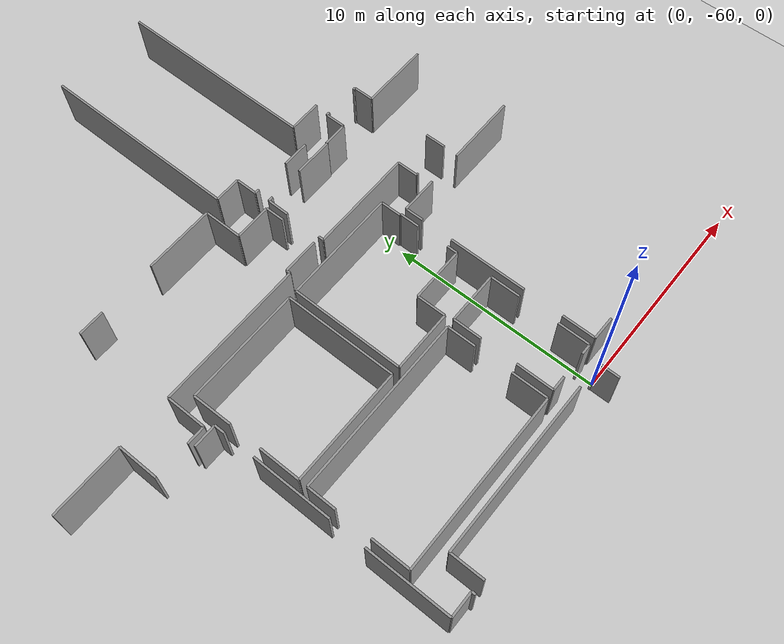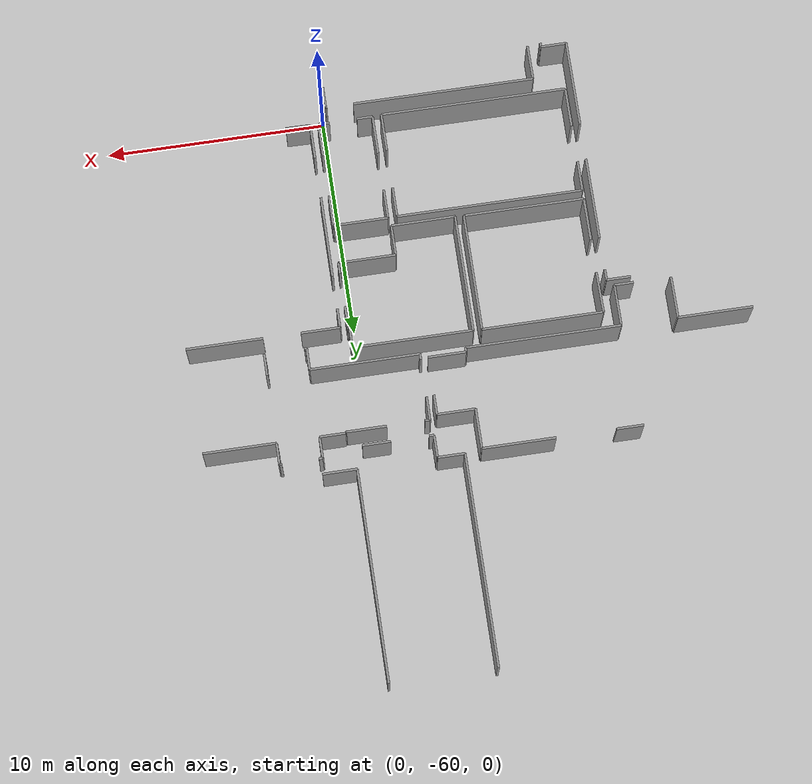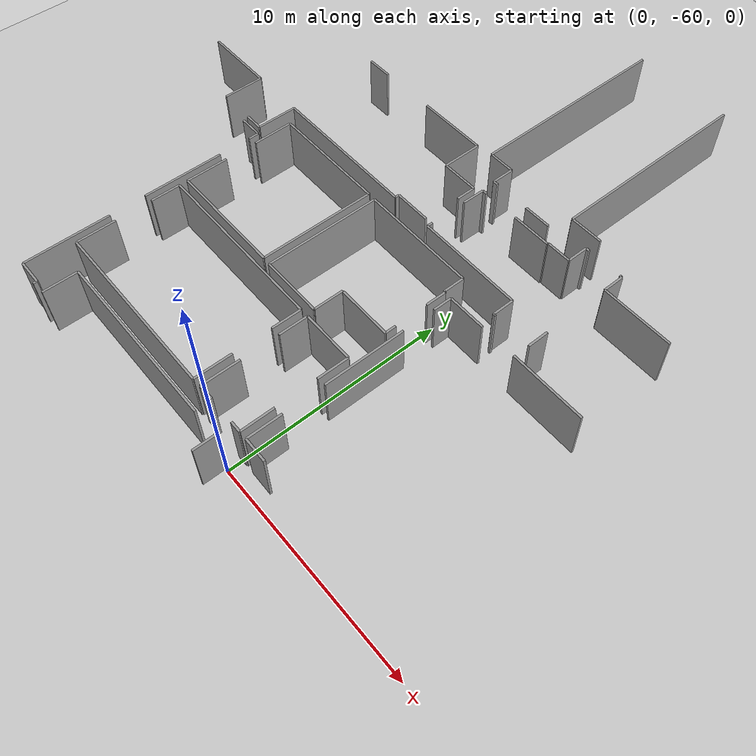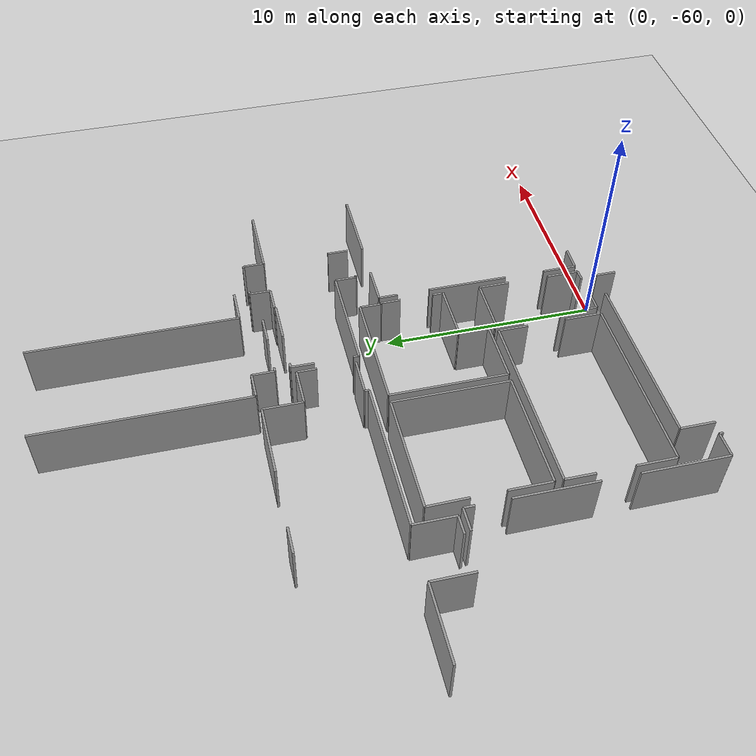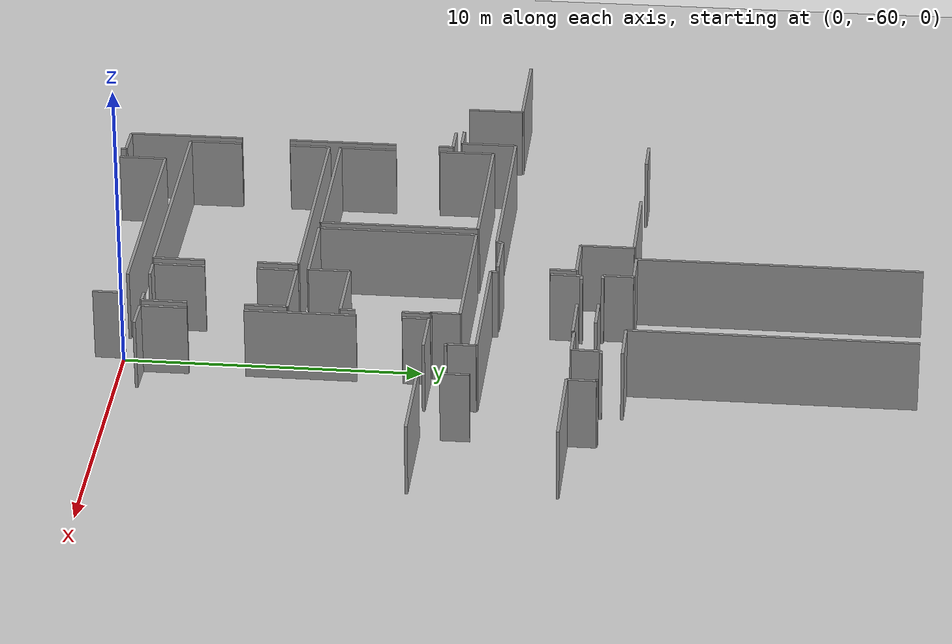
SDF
<sdf version="1.6">
 <world name="default">
  <model name="ground_plane">
   <static>1</static>
   <link name="link">
    <collision name="collision">
     <geometry><plane><normal>0 0 1</normal><size>100 100</size></plane></geometry>
     <surface><friction><ode><mu>100</mu><mu2>50</mu2></ode></friction></surface>
    </collision>
    <visual name="visual">
     <cast_shadows>0</cast_shadows>
     <geometry><plane><normal>0 0 1</normal><size>100 100</size></plane></geometry>
     <material>
      <script><uri>file://media/materials/scripts/gazebo.material</uri><name>Gazebo/Grey</name></script>
     </material>
    </visual>
   </link>
  </model>
  <model name="0510045926_A-40">
   <static>1</static>
   <link name="Wall_1530">
    <collision name="Wall_1530_Collision">
     <geometry><box><size>1.21662869726 0.1 2.5</size></box></geometry>
     <pose>0.608314348629 0 1.25 0 0 0</pose>
    </collision>
    <visual name="Wall_1530_Visual">
     <pose>0.608314348629 0 1.25 0 0 0</pose>
     <geometry><box><size>1.21662869726 0.1 2.5</size></box></geometry>
     <material>
      <script><uri>file://media/materials/scripts/gazebo.material</uri><name>Gazebo/Grey</name></script>
      <ambient>1 1 1 1</ambient>
     </material>
    </visual>
    <pose>121.913937417 -144.413597913 0 0 0 0.0</pose>
   </link>
   <link name="Wall_1531">
    <collision name="Wall_1531_Collision">
     <geometry><box><size>3.32624712057 0.1 2.5</size></box></geometry>
     <pose>1.66312356028 0 1.25 0 0 0</pose>
    </collision>
    <visual name="Wall_1531_Visual">
     <pose>1.66312356028 0 1.25 0 0 0</pose>
     <geometry><box><size>3.32624712057 0.1 2.5</size></box></geometry>
     <material>
      <script><uri>file://media/materials/scripts/gazebo.material</uri><name>Gazebo/Grey</name></script>
      <ambient>1 1 1 1</ambient>
     </material>
    </visual>
    <pose>125.848118135 -144.413597913 0 0 0 0.0</pose>
   </link>
   <link name="Wall_1532">
    <collision name="Wall_1532_Collision">
     <geometry><box><size>1.81313974223 0.1 2.5</size></box></geometry>
     <pose>0.906569871116 0 1.25 0 0 0</pose>
    </collision>
    <visual name="Wall_1532_Visual">
     <pose>0.906569871116 0 1.25 0 0 0</pose>
     <geometry><box><size>1.81313974223 0.1 2.5</size></box></geometry>
     <material>
      <script><uri>file://media/materials/scripts/gazebo.material</uri><name>Gazebo/Grey</name></script>
      <ambient>1 1 1 1</ambient>
     </material>
    </visual>
    <pose>129.174365255 -144.413597913 0 0 0 -1.57079632679</pose>
   </link>
   <link name="Wall_1533">
    <collision name="Wall_1533_Collision">
     <geometry><box><size>1.73698939606 0.1 2.5</size></box></geometry>
     <pose>0.868494698032 0 1.25 0 0 0</pose>
    </collision>
    <visual name="Wall_1533_Visual">
     <pose>0.868494698032 0 1.25 0 0 0</pose>
     <geometry><box><size>1.73698939606 0.1 2.5</size></box></geometry>
     <material>
      <script><uri>file://media/materials/scripts/gazebo.material</uri><name>Gazebo/Grey</name></script>
      <ambient>1 1 1 1</ambient>
     </material>
    </visual>
    <pose>129.174365255 -146.226737656 0 0 0 0.0</pose>
   </link>
   <link name="Wall_1534">
    <collision name="Wall_1534_Collision">
     <geometry><box><size>0.895781905409 0.1 2.5</size></box></geometry>
     <pose>0.447890952704 0 1.25 0 0 0</pose>
    </collision>
    <visual name="Wall_1534_Visual">
     <pose>0.447890952704 0 1.25 0 0 0</pose>
     <geometry><box><size>0.895781905409 0.1 2.5</size></box></geometry>
     <material>
      <script><uri>file://media/materials/scripts/gazebo.material</uri><name>Gazebo/Grey</name></script>
      <ambient>1 1 1 1</ambient>
     </material>
    </visual>
    <pose>130.911354651 -146.226737656 0 0 0 -1.57079632679</pose>
   </link>
   <link name="Wall_1535">
    <collision name="Wall_1535_Collision">
     <geometry><box><size>1.71566729914 0.1 2.5</size></box></geometry>
     <pose>0.857833649569 0 1.25 0 0 0</pose>
    </collision>
    <visual name="Wall_1535_Visual">
     <pose>0.857833649569 0 1.25 0 0 0</pose>
     <geometry><box><size>1.71566729914 0.1 2.5</size></box></geometry>
     <material>
      <script><uri>file://media/materials/scripts/gazebo.material</uri><name>Gazebo/Grey</name></script>
      <ambient>1 1 1 1</ambient>
     </material>
    </visual>
    <pose>130.911354651 -148.869662337 0 0 0 3.14159265359</pose>
   </link>
   <link name="Wall_1536">
    <collision name="Wall_1536_Collision">
     <geometry><box><size>0.195198720674 0.1 2.5</size></box></geometry>
     <pose>0.0975993603371 0 1.25 0 0 0</pose>
    </collision>
    <visual name="Wall_1536_Visual">
     <pose>0.0975993603371 0 1.25 0 0 0</pose>
     <geometry><box><size>0.195198720674 0.1 2.5</size></box></geometry>
     <material>
      <script><uri>file://media/materials/scripts/gazebo.material</uri><name>Gazebo/Grey</name></script>
      <ambient>1 1 1 1</ambient>
     </material>
    </visual>
    <pose>129.195687352 -148.869662337 0 0 0 -1.57079632679</pose>
   </link>
   <link name="Wall_1537">
    <collision name="Wall_1537_Collision">
     <geometry><box><size>7.03603815132 0.1 2.5</size></box></geometry>
     <pose>3.51801907566 0 1.25 0 0 0</pose>
    </collision>
    <visual name="Wall_1537_Visual">
     <pose>3.51801907566 0 1.25 0 0 0</pose>
     <geometry><box><size>7.03603815132 0.1 2.5</size></box></geometry>
     <material>
      <script><uri>file://media/materials/scripts/gazebo.material</uri><name>Gazebo/Grey</name></script>
      <ambient>1 1 1 1</ambient>
     </material>
    </visual>
    <pose>129.195687352 -149.064861057 0 0 0 3.14159265359</pose>
   </link>
   <link name="Wall_1538">
    <collision name="Wall_1538_Collision">
     <geometry><box><size>1.8872594125 0.1 2.5</size></box></geometry>
     <pose>0.94362970625 0 1.25 0 0 0</pose>
    </collision>
    <visual name="Wall_1538_Visual">
     <pose>0.94362970625 0 1.25 0 0 0</pose>
     <geometry><box><size>1.8872594125 0.1 2.5</size></box></geometry>
     <material>
      <script><uri>file://media/materials/scripts/gazebo.material</uri><name>Gazebo/Grey</name></script>
      <ambient>1 1 1 1</ambient>
     </material>
    </visual>
    <pose>122.159649201 -149.064861057 0 0 0 -1.57079632679</pose>
   </link>
   <link name="Wall_1539">
    <collision name="Wall_1539_Collision">
     <geometry><box><size>0.87192146361 0.1 2.5</size></box></geometry>
     <pose>0.435960731805 0 1.25 0 0 0</pose>
    </collision>
    <visual name="Wall_1539_Visual">
     <pose>0.435960731805 0 1.25 0 0 0</pose>
     <geometry><box><size>0.87192146361 0.1 2.5</size></box></geometry>
     <material>
      <script><uri>file://media/materials/scripts/gazebo.material</uri><name>Gazebo/Grey</name></script>
      <ambient>1 1 1 1</ambient>
     </material>
    </visual>
    <pose>122.159649201 -150.95212047 0 0 0 3.14159265359</pose>
   </link>
   <link name="Wall_1540">
    <collision name="Wall_1540_Collision">
     <geometry><box><size>1.89944346789 0.1 2.5</size></box></geometry>
     <pose>0.949721733943 0 1.25 0 0 0</pose>
    </collision>
    <visual name="Wall_1540_Visual">
     <pose>0.949721733943 0 1.25 0 0 0</pose>
     <geometry><box><size>1.89944346789 0.1 2.5</size></box></geometry>
     <material>
      <script><uri>file://media/materials/scripts/gazebo.material</uri><name>Gazebo/Grey</name></script>
      <ambient>1 1 1 1</ambient>
     </material>
    </visual>
    <pose>119.591098025 -150.95212047 0 0 0 1.57079632679</pose>
   </link>
   <link name="Wall_1541">
    <collision name="Wall_1541_Collision">
     <geometry><box><size>3.40671265301 0.1 2.5</size></box></geometry>
     <pose>1.70335632651 0 1.25 0 0 0</pose>
    </collision>
    <visual name="Wall_1541_Visual">
     <pose>1.70335632651 0 1.25 0 0 0</pose>
     <geometry><box><size>3.40671265301 0.1 2.5</size></box></geometry>
     <material>
      <script><uri>file://media/materials/scripts/gazebo.material</uri><name>Gazebo/Grey</name></script>
      <ambient>1 1 1 1</ambient>
     </material>
    </visual>
    <pose>119.591098025 -149.052677002 0 0 0 3.14159265359</pose>
   </link>
   <link name="Wall_1659">
    <collision name="Wall_1659_Collision">
     <geometry><box><size>1.58951155899 0.1 2.5</size></box></geometry>
     <pose>0.794755779494 0 1.25 0 0 0</pose>
    </collision>
    <visual name="Wall_1659_Visual">
     <pose>0.794755779494 0 1.25 0 0 0</pose>
     <geometry><box><size>1.58951155899 0.1 2.5</size></box></geometry>
     <material>
      <script><uri>file://media/materials/scripts/gazebo.material</uri><name>Gazebo/Grey</name></script>
      <ambient>1 1 1 1</ambient>
     </material>
    </visual>
    <pose>124.237030644 -162.722171808 0 0 0 1.57079632679</pose>
   </link>
   <link name="Wall_1660">
    <collision name="Wall_1660_Collision">
     <geometry><box><size>8.27271977307 0.1 2.5</size></box></geometry>
     <pose>4.13635988654 0 1.25 0 0 0</pose>
    </collision>
    <visual name="Wall_1660_Visual">
     <pose>4.13635988654 0 1.25 0 0 0</pose>
     <geometry><box><size>8.27271977307 0.1 2.5</size></box></geometry>
     <material>
      <script><uri>file://media/materials/scripts/gazebo.material</uri><name>Gazebo/Grey</name></script>
      <ambient>1 1 1 1</ambient>
     </material>
    </visual>
    <pose>124.237030644 -161.132660249 0 0 0 0.0</pose>
   </link>
   <link name="Wall_1661">
    <collision name="Wall_1661_Collision">
     <geometry><box><size>0.0619356148823 0.1 2.5</size></box></geometry>
     <pose>0.0309678074412 0 1.25 0 0 0</pose>
    </collision>
    <visual name="Wall_1661_Visual">
     <pose>0.0309678074412 0 1.25 0 0 0</pose>
     <geometry><box><size>0.0619356148823 0.1 2.5</size></box></geometry>
     <material>
      <script><uri>file://media/materials/scripts/gazebo.material</uri><name>Gazebo/Grey</name></script>
      <ambient>1 1 1 1</ambient>
     </material>
    </visual>
    <pose>133.713179721 -161.132660249 0 0 0 0.0</pose>
   </link>
   <link name="Wall_1662">
    <collision name="Wall_1662_Collision">
     <geometry><box><size>0.972693755037 0.1 2.5</size></box></geometry>
     <pose>0.486346877518 0 1.25 0 0 0</pose>
    </collision>
    <visual name="Wall_1662_Visual">
     <pose>0.486346877518 0 1.25 0 0 0</pose>
     <geometry><box><size>0.972693755037 0.1 2.5</size></box></geometry>
     <material>
      <script><uri>file://media/materials/scripts/gazebo.material</uri><name>Gazebo/Grey</name></script>
      <ambient>1 1 1 1</ambient>
     </material>
    </visual>
    <pose>133.775115336 -161.132660249 0 0 0 -1.57079632679</pose>
   </link>
   <link name="Wall_1666">
    <collision name="Wall_1666_Collision">
     <geometry><box><size>8.46131879708 0.1 2.5</size></box></geometry>
     <pose>4.23065939854 0 1.25 0 0 0</pose>
    </collision>
    <visual name="Wall_1666_Visual">
     <pose>4.23065939854 0 1.25 0 0 0</pose>
     <geometry><box><size>8.46131879708 0.1 2.5</size></box></geometry>
     <material>
      <script><uri>file://media/materials/scripts/gazebo.material</uri><name>Gazebo/Grey</name></script>
      <ambient>1 1 1 1</ambient>
     </material>
    </visual>
    <pose>122.862263061 -155.549570702 0 0 0 0.0</pose>
   </link>
   <link name="Wall_1667">
    <collision name="Wall_1667_Collision">
     <geometry><box><size>1.37502141728 0.1 2.5</size></box></geometry>
     <pose>0.687510708642 0 1.25 0 0 0</pose>
    </collision>
    <visual name="Wall_1667_Visual">
     <pose>0.687510708642 0 1.25 0 0 0</pose>
     <geometry><box><size>1.37502141728 0.1 2.5</size></box></geometry>
     <material>
      <script><uri>file://media/materials/scripts/gazebo.material</uri><name>Gazebo/Grey</name></script>
      <ambient>1 1 1 1</ambient>
     </material>
    </visual>
    <pose>131.323581858 -155.549570702 0 0 0 -1.57079632679</pose>
   </link>
   <link name="Wall_1668">
    <collision name="Wall_1668_Collision">
     <geometry><box><size>1.72328233375 0.1 2.5</size></box></geometry>
     <pose>0.861641166877 0 1.25 0 0 0</pose>
    </collision>
    <visual name="Wall_1668_Visual">
     <pose>0.861641166877 0 1.25 0 0 0</pose>
     <geometry><box><size>1.72328233375 0.1 2.5</size></box></geometry>
     <material>
      <script><uri>file://media/materials/scripts/gazebo.material</uri><name>Gazebo/Grey</name></script>
      <ambient>1 1 1 1</ambient>
     </material>
    </visual>
    <pose>131.323581858 -158.713363751 0 0 0 -1.57079632679</pose>
   </link>
   <link name="Wall_1669">
    <collision name="Wall_1669_Collision">
     <geometry><box><size>8.46385714195 0.1 2.5</size></box></geometry>
     <pose>4.23192857098 0 1.25 0 0 0</pose>
    </collision>
    <visual name="Wall_1669_Visual">
     <pose>4.23192857098 0 1.25 0 0 0</pose>
     <geometry><box><size>8.46385714195 0.1 2.5</size></box></geometry>
     <material>
      <script><uri>file://media/materials/scripts/gazebo.material</uri><name>Gazebo/Grey</name></script>
      <ambient>1 1 1 1</ambient>
     </material>
    </visual>
    <pose>131.323581858 -160.436646085 0 0 0 3.14159265359</pose>
   </link>
   <link name="Wall_1670">
    <collision name="Wall_1670_Collision">
     <geometry><box><size>1.81440891467 0.1 2.5</size></box></geometry>
     <pose>0.907204457334 0 1.25 0 0 0</pose>
    </collision>
    <visual name="Wall_1670_Visual">
     <pose>0.907204457334 0 1.25 0 0 0</pose>
     <geometry><box><size>1.81440891467 0.1 2.5</size></box></geometry>
     <material>
      <script><uri>file://media/materials/scripts/gazebo.material</uri><name>Gazebo/Grey</name></script>
      <ambient>1 1 1 1</ambient>
     </material>
    </visual>
    <pose>122.859724716 -160.436646085 0 0 0 1.57079632679</pose>
   </link>
   <link name="Wall_1671">
    <collision name="Wall_1671_Collision">
     <geometry><box><size>1.37045474727 0.1 2.5</size></box></geometry>
     <pose>0.685227373634 0 1.25 0 0 0</pose>
    </collision>
    <visual name="Wall_1671_Visual">
     <pose>0.685227373634 0 1.25 0 0 0</pose>
     <geometry><box><size>1.37045474727 0.1 2.5</size></box></geometry>
     <material>
      <script><uri>file://media/materials/scripts/gazebo.material</uri><name>Gazebo/Grey</name></script>
      <ambient>1 1 1 1</ambient>
     </material>
    </visual>
    <pose>122.859724716 -156.920023099 0 0 0 1.56894413406</pose>
   </link>
   <link name="Wall_1672">
    <collision name="Wall_1672_Collision">
     <geometry><box><size>5.49729348978 0.1 2.5</size></box></geometry>
     <pose>2.74864674489 0 1.25 0 0 0</pose>
    </collision>
    <visual name="Wall_1672_Visual">
     <pose>2.74864674489 0 1.25 0 0 0</pose>
     <geometry><box><size>5.49729348978 0.1 2.5</size></box></geometry>
     <material>
      <script><uri>file://media/materials/scripts/gazebo.material</uri><name>Gazebo/Grey</name></script>
      <ambient>1 1 1 1</ambient>
     </material>
    </visual>
    <pose>122.841956302 -149.788797015 0 0 0 0.0</pose>
   </link>
   <link name="Wall_1673">
    <collision name="Wall_1673_Collision">
     <geometry><box><size>5.36022286668 0.1 2.5</size></box></geometry>
     <pose>2.68011143334 0 1.25 0 0 0</pose>
    </collision>
    <visual name="Wall_1673_Visual">
     <pose>2.68011143334 0 1.25 0 0 0</pose>
     <geometry><box><size>5.36022286668 0.1 2.5</size></box></geometry>
     <material>
      <script><uri>file://media/materials/scripts/gazebo.material</uri><name>Gazebo/Grey</name></script>
      <ambient>1 1 1 1</ambient>
     </material>
    </visual>
    <pose>128.339249792 -149.788797015 0 0 0 -1.57079632679</pose>
   </link>
   <link name="Wall_1674">
    <collision name="Wall_1674_Collision">
     <geometry><box><size>5.4749560549 0.1 2.5</size></box></geometry>
     <pose>2.73747802745 0 1.25 0 0 0</pose>
    </collision>
    <visual name="Wall_1674_Visual">
     <pose>2.73747802745 0 1.25 0 0 0</pose>
     <geometry><box><size>5.4749560549 0.1 2.5</size></box></geometry>
     <material>
      <script><uri>file://media/materials/scripts/gazebo.material</uri><name>Gazebo/Grey</name></script>
      <ambient>1 1 1 1</ambient>
     </material>
    </visual>
    <pose>128.339249792 -155.149019882 0 0 0 3.14159265359</pose>
   </link>
   <link name="Wall_1675">
    <collision name="Wall_1675_Collision">
     <geometry><box><size>1.96264825521 0.1 2.5</size></box></geometry>
     <pose>0.981324127603 0 1.25 0 0 0</pose>
    </collision>
    <visual name="Wall_1675_Visual">
     <pose>0.981324127603 0 1.25 0 0 0</pose>
     <geometry><box><size>1.96264825521 0.1 2.5</size></box></geometry>
     <material>
      <script><uri>file://media/materials/scripts/gazebo.material</uri><name>Gazebo/Grey</name></script>
      <ambient>1 1 1 1</ambient>
     </material>
    </visual>
    <pose>122.864293737 -155.149019882 0 0 0 1.57079632679</pose>
   </link>
   <link name="Wall_1676">
    <collision name="Wall_1676_Collision">
     <geometry><box><size>1.86810154386 0.1 2.5</size></box></geometry>
     <pose>0.934050771928 0 1.25 0 0 0</pose>
    </collision>
    <visual name="Wall_1676_Visual">
     <pose>0.934050771928 0 1.25 0 0 0</pose>
     <geometry><box><size>1.86810154386 0.1 2.5</size></box></geometry>
     <material>
      <script><uri>file://media/materials/scripts/gazebo.material</uri><name>Gazebo/Grey</name></script>
      <ambient>1 1 1 1</ambient>
     </material>
    </visual>
    <pose>122.864293737 -151.656765006 0 0 0 1.58275390334</pose>
   </link>
   <link name="Wall_1714">
    <collision name="Wall_1714_Collision">
     <geometry><box><size>1.09428047442 0.1 2.5</size></box></geometry>
     <pose>0.547140237208 0 1.25 0 0 0</pose>
    </collision>
    <visual name="Wall_1714_Visual">
     <pose>0.547140237208 0 1.25 0 0 0</pose>
     <geometry><box><size>1.09428047442 0.1 2.5</size></box></geometry>
     <material>
      <script><uri>file://media/materials/scripts/gazebo.material</uri><name>Gazebo/Grey</name></script>
      <ambient>1 1 1 1</ambient>
     </material>
    </visual>
    <pose>121.371239283 -151.234892089 0 0 0 0.0</pose>
   </link>
   <link name="Wall_1715">
    <collision name="Wall_1715_Collision">
     <geometry><box><size>0.490915898289 0.1 2.5</size></box></geometry>
     <pose>0.245457949144 0 1.25 0 0 0</pose>
    </collision>
    <visual name="Wall_1715_Visual">
     <pose>0.245457949144 0 1.25 0 0 0</pose>
     <geometry><box><size>0.490915898289 0.1 2.5</size></box></geometry>
     <material>
      <script><uri>file://media/materials/scripts/gazebo.material</uri><name>Gazebo/Grey</name></script>
      <ambient>1 1 1 1</ambient>
     </material>
    </visual>
    <pose>122.465519758 -151.234892089 0 0 0 -1.57079632679</pose>
   </link>
   <link name="Wall_1716">
    <collision name="Wall_1716_Collision">
     <geometry><box><size>3.74964304525 0.1 2.5</size></box></geometry>
     <pose>1.87482152263 0 1.25 0 0 0</pose>
    </collision>
    <visual name="Wall_1716_Visual">
     <pose>1.87482152263 0 1.25 0 0 0</pose>
     <geometry><box><size>3.74964304525 0.1 2.5</size></box></geometry>
     <material>
      <script><uri>file://media/materials/scripts/gazebo.material</uri><name>Gazebo/Grey</name></script>
      <ambient>1 1 1 1</ambient>
     </material>
    </visual>
    <pose>122.465519758 -153.235615517 0 0 0 -1.57079632679</pose>
   </link>
   <link name="Wall_1717">
    <collision name="Wall_1717_Collision">
     <geometry><box><size>3.93874973823 0.1 2.5</size></box></geometry>
     <pose>1.96937486912 0 1.25 0 0 0</pose>
    </collision>
    <visual name="Wall_1717_Visual">
     <pose>1.96937486912 0 1.25 0 0 0</pose>
     <geometry><box><size>3.93874973823 0.1 2.5</size></box></geometry>
     <material>
      <script><uri>file://media/materials/scripts/gazebo.material</uri><name>Gazebo/Grey</name></script>
      <ambient>1 1 1 1</ambient>
     </material>
    </visual>
    <pose>122.465519758 -158.660058509 0 0 0 -1.57079632679</pose>
   </link>
   <link name="Wall_1718">
    <collision name="Wall_1718_Collision">
     <geometry><box><size>1.1661156343 0.1 2.5</size></box></geometry>
     <pose>0.58305781715 0 1.25 0 0 0</pose>
    </collision>
    <visual name="Wall_1718_Visual">
     <pose>0.58305781715 0 1.25 0 0 0</pose>
     <geometry><box><size>1.1661156343 0.1 2.5</size></box></geometry>
     <material>
      <script><uri>file://media/materials/scripts/gazebo.material</uri><name>Gazebo/Grey</name></script>
      <ambient>1 1 1 1</ambient>
     </material>
    </visual>
    <pose>122.465519758 -162.598808247 0 0 0 0.0</pose>
   </link>
   <link name="Wall_1719">
    <collision name="Wall_1719_Collision">
     <geometry><box><size>0.176922637594 0.1 2.5</size></box></geometry>
     <pose>0.0884613187971 0 1.25 0 0 0</pose>
    </collision>
    <visual name="Wall_1719_Visual">
     <pose>0.0884613187971 0 1.25 0 0 0</pose>
     <geometry><box><size>0.176922637594 0.1 2.5</size></box></geometry>
     <material>
      <script><uri>file://media/materials/scripts/gazebo.material</uri><name>Gazebo/Grey</name></script>
      <ambient>1 1 1 1</ambient>
     </material>
    </visual>
    <pose>123.631635392 -162.598808247 0 0 0 -1.57079632679</pose>
   </link>
   <link name="Wall_1758">
    <collision name="Wall_1758_Collision">
     <geometry><box><size>5.36504572194 0.1 2.5</size></box></geometry>
     <pose>2.68252286097 0 1.25 0 0 0</pose>
    </collision>
    <visual name="Wall_1758_Visual">
     <pose>2.68252286097 0 1.25 0 0 0</pose>
     <geometry><box><size>5.36504572194 0.1 2.5</size></box></geometry>
     <material>
      <script><uri>file://media/materials/scripts/gazebo.material</uri><name>Gazebo/Grey</name></script>
      <ambient>1 1 1 1</ambient>
     </material>
    </visual>
    <pose>128.733708585 -155.170595813 0 0 0 1.57079632679</pose>
   </link>
   <link name="Wall_1759">
    <collision name="Wall_1759_Collision">
     <geometry><box><size>5.44601892336 0.1 2.5</size></box></geometry>
     <pose>2.72300946168 0 1.25 0 0 0</pose>
    </collision>
    <visual name="Wall_1759_Visual">
     <pose>2.72300946168 0 1.25 0 0 0</pose>
     <geometry><box><size>5.44601892336 0.1 2.5</size></box></geometry>
     <material>
      <script><uri>file://media/materials/scripts/gazebo.material</uri><name>Gazebo/Grey</name></script>
      <ambient>1 1 1 1</ambient>
     </material>
    </visual>
    <pose>128.733708585 -149.805550091 0 0 0 0.0</pose>
   </link>
   <link name="Wall_1760">
    <collision name="Wall_1760_Collision">
     <geometry><box><size>0.983608637988 0.1 2.5</size></box></geometry>
     <pose>0.491804318994 0 1.25 0 0 0</pose>
    </collision>
    <visual name="Wall_1760_Visual">
     <pose>0.491804318994 0 1.25 0 0 0</pose>
     <geometry><box><size>0.983608637988 0.1 2.5</size></box></geometry>
     <material>
      <script><uri>file://media/materials/scripts/gazebo.material</uri><name>Gazebo/Grey</name></script>
      <ambient>1 1 1 1</ambient>
     </material>
    </visual>
    <pose>134.179727509 -149.805550091 0 0 0 -1.57079632679</pose>
   </link>
   <link name="Wall_1761">
    <collision name="Wall_1761_Collision">
     <geometry><box><size>0.0560974216762 0.1 2.5</size></box></geometry>
     <pose>0.0280487108381 0 1.25 0 0 0</pose>
    </collision>
    <visual name="Wall_1761_Visual">
     <pose>0.0280487108381 0 1.25 0 0 0</pose>
     <geometry><box><size>0.0560974216762 0.1 2.5</size></box></geometry>
     <material>
      <script><uri>file://media/materials/scripts/gazebo.material</uri><name>Gazebo/Grey</name></script>
      <ambient>1 1 1 1</ambient>
     </material>
    </visual>
    <pose>134.179727509 -150.789158729 0 0 0 0.0</pose>
   </link>
   <link name="Wall_1762">
    <collision name="Wall_1762_Collision">
     <geometry><box><size>0.940202940673 0.1 2.5</size></box></geometry>
     <pose>0.470101470336 0 1.25 0 0 0</pose>
    </collision>
    <visual name="Wall_1762_Visual">
     <pose>0.470101470336 0 1.25 0 0 0</pose>
     <geometry><box><size>0.940202940673 0.1 2.5</size></box></geometry>
     <material>
      <script><uri>file://media/materials/scripts/gazebo.material</uri><name>Gazebo/Grey</name></script>
      <ambient>1 1 1 1</ambient>
     </material>
    </visual>
    <pose>134.23582493 -150.789158729 0 0 0 -1.57079632679</pose>
   </link>
   <link name="Wall_1763">
    <collision name="Wall_1763_Collision">
     <geometry><box><size>0.49903860188 0.1 2.5</size></box></geometry>
     <pose>0.24951930094 0 1.25 0 0 0</pose>
    </collision>
    <visual name="Wall_1763_Visual">
     <pose>0.24951930094 0 1.25 0 0 0</pose>
     <geometry><box><size>0.49903860188 0.1 2.5</size></box></geometry>
     <material>
      <script><uri>file://media/materials/scripts/gazebo.material</uri><name>Gazebo/Grey</name></script>
      <ambient>1 1 1 1</ambient>
     </material>
    </visual>
    <pose>134.23582493 -153.278259711 0 0 0 -1.57079632679</pose>
   </link>
   <link name="Wall_1764">
    <collision name="Wall_1764_Collision">
     <geometry><box><size>2.59368079044 0.1 2.5</size></box></geometry>
     <pose>1.29684039522 0 1.25 0 0 0</pose>
    </collision>
    <visual name="Wall_1764_Visual">
     <pose>1.29684039522 0 1.25 0 0 0</pose>
     <geometry><box><size>2.59368079044 0.1 2.5</size></box></geometry>
     <material>
      <script><uri>file://media/materials/scripts/gazebo.material</uri><name>Gazebo/Grey</name></script>
      <ambient>1 1 1 1</ambient>
     </material>
    </visual>
    <pose>134.23582493 -153.777298313 0 0 0 3.14159265359</pose>
   </link>
   <link name="Wall_1765">
    <collision name="Wall_1765_Collision">
     <geometry><box><size>1.38441329331 0.1 2.5</size></box></geometry>
     <pose>0.692206646656 0 1.25 0 0 0</pose>
    </collision>
    <visual name="Wall_1765_Visual">
     <pose>0.692206646656 0 1.25 0 0 0</pose>
     <geometry><box><size>1.38441329331 0.1 2.5</size></box></geometry>
     <material>
      <script><uri>file://media/materials/scripts/gazebo.material</uri><name>Gazebo/Grey</name></script>
      <ambient>1 1 1 1</ambient>
     </material>
    </visual>
    <pose>131.64214414 -153.777298313 0 0 0 -1.57079632679</pose>
   </link>
   <link name="Wall_1766">
    <collision name="Wall_1766_Collision">
     <geometry><box><size>2.90844912357 0.1 2.5</size></box></geometry>
     <pose>1.45422456178 0 1.25 0 0 0</pose>
    </collision>
    <visual name="Wall_1766_Visual">
     <pose>1.45422456178 0 1.25 0 0 0</pose>
     <geometry><box><size>2.90844912357 0.1 2.5</size></box></geometry>
     <material>
      <script><uri>file://media/materials/scripts/gazebo.material</uri><name>Gazebo/Grey</name></script>
      <ambient>1 1 1 1</ambient>
     </material>
    </visual>
    <pose>131.64214414 -155.161711606 0 0 0 -3.13853802877</pose>
   </link>
   <link name="Wall_1767">
    <collision name="Wall_1767_Collision">
     <geometry><box><size>0.222612845294 0.1 2.5</size></box></geometry>
     <pose>0.111306422647 0 1.25 0 0 0</pose>
    </collision>
    <visual name="Wall_1767_Visual">
     <pose>0.111306422647 0 1.25 0 0 0</pose>
     <geometry><box><size>0.222612845294 0.1 2.5</size></box></geometry>
     <material>
      <script><uri>file://media/materials/scripts/gazebo.material</uri><name>Gazebo/Grey</name></script>
      <ambient>1 1 1 1</ambient>
     </material>
    </visual>
    <pose>131.254538878 -146.028492921 0 0 0 0.0</pose>
   </link>
   <link name="Wall_1768">
    <collision name="Wall_1768_Collision">
     <geometry><box><size>1.84664589454 0.1 2.5</size></box></geometry>
     <pose>0.923322947272 0 1.25 0 0 0</pose>
    </collision>
    <visual name="Wall_1768_Visual">
     <pose>0.923322947272 0 1.25 0 0 0</pose>
     <geometry><box><size>1.84664589454 0.1 2.5</size></box></geometry>
     <material>
      <script><uri>file://media/materials/scripts/gazebo.material</uri><name>Gazebo/Grey</name></script>
      <ambient>1 1 1 1</ambient>
     </material>
    </visual>
    <pose>133.182919477 -146.028492921 0 0 0 0.0</pose>
   </link>
   <link name="Wall_1769">
    <collision name="Wall_1769_Collision">
     <geometry><box><size>0.0505130629573 0.1 2.5</size></box></geometry>
     <pose>0.0252565314786 0 1.25 0 0 0</pose>
    </collision>
    <visual name="Wall_1769_Visual">
     <pose>0.0252565314786 0 1.25 0 0 0</pose>
     <geometry><box><size>0.0505130629573 0.1 2.5</size></box></geometry>
     <material>
      <script><uri>file://media/materials/scripts/gazebo.material</uri><name>Gazebo/Grey</name></script>
      <ambient>1 1 1 1</ambient>
     </material>
    </visual>
    <pose>135.029565372 -146.028492921 0 0 0 1.57079632679</pose>
   </link>
   <link name="Wall_1770">
    <collision name="Wall_1770_Collision">
     <geometry><box><size>1.16306962045 0.1 2.5</size></box></geometry>
     <pose>0.581534810227 0 1.25 0 0 0</pose>
    </collision>
    <visual name="Wall_1770_Visual">
     <pose>0.581534810227 0 1.25 0 0 0</pose>
     <geometry><box><size>1.16306962045 0.1 2.5</size></box></geometry>
     <material>
      <script><uri>file://media/materials/scripts/gazebo.material</uri><name>Gazebo/Grey</name></script>
      <ambient>1 1 1 1</ambient>
     </material>
    </visual>
    <pose>135.029565372 -145.977979858 0 0 0 0.0</pose>
   </link>
   <link name="Wall_1771">
    <collision name="Wall_1771_Collision">
     <geometry><box><size>0.971424582601 0.1 2.5</size></box></geometry>
     <pose>0.4857122913 0 1.25 0 0 0</pose>
    </collision>
    <visual name="Wall_1771_Visual">
     <pose>0.4857122913 0 1.25 0 0 0</pose>
     <geometry><box><size>0.971424582601 0.1 2.5</size></box></geometry>
     <material>
      <script><uri>file://media/materials/scripts/gazebo.material</uri><name>Gazebo/Grey</name></script>
      <ambient>1 1 1 1</ambient>
     </material>
    </visual>
    <pose>136.192634992 -145.977979858 0 0 0 1.57079632679</pose>
   </link>
   <link name="Wall_1772">
    <collision name="Wall_1772_Collision">
     <geometry><box><size>0.169307602977 0.1 2.5</size></box></geometry>
     <pose>0.0846538014887 0 1.25 0 0 0</pose>
    </collision>
    <visual name="Wall_1772_Visual">
     <pose>0.0846538014887 0 1.25 0 0 0</pose>
     <geometry><box><size>0.169307602977 0.1 2.5</size></box></geometry>
     <material>
      <script><uri>file://media/materials/scripts/gazebo.material</uri><name>Gazebo/Grey</name></script>
      <ambient>1 1 1 1</ambient>
     </material>
    </visual>
    <pose>136.192634992 -145.006555276 0 0 0 0.0</pose>
   </link>
   <link name="Wall_1773">
    <collision name="Wall_1773_Collision">
     <geometry><box><size>0.109148829506 0.1 2.5</size></box></geometry>
     <pose>0.0545744147529 0 1.25 0 0 0</pose>
    </collision>
    <visual name="Wall_1773_Visual">
     <pose>0.0545744147529 0 1.25 0 0 0</pose>
     <geometry><box><size>0.109148829506 0.1 2.5</size></box></geometry>
     <material>
      <script><uri>file://media/materials/scripts/gazebo.material</uri><name>Gazebo/Grey</name></script>
      <ambient>1 1 1 1</ambient>
     </material>
    </visual>
    <pose>138.008820748 -145.006555276 0 0 0 0.0</pose>
   </link>
   <link name="Wall_1774">
    <collision name="Wall_1774_Collision">
     <geometry><box><size>0.971678417088 0.1 2.5</size></box></geometry>
     <pose>0.485839208544 0 1.25 0 0 0</pose>
    </collision>
    <visual name="Wall_1774_Visual">
     <pose>0.485839208544 0 1.25 0 0 0</pose>
     <geometry><box><size>0.971678417088 0.1 2.5</size></box></geometry>
     <material>
      <script><uri>file://media/materials/scripts/gazebo.material</uri><name>Gazebo/Grey</name></script>
      <ambient>1 1 1 1</ambient>
     </material>
    </visual>
    <pose>138.117969578 -145.006555276 0 0 0 -1.57079632679</pose>
   </link>
   <link name="Wall_1775">
    <collision name="Wall_1775_Collision">
     <geometry><box><size>3.29756382351 0.1 2.5</size></box></geometry>
     <pose>1.64878191175 0 1.25 0 0 0</pose>
    </collision>
    <visual name="Wall_1775_Visual">
     <pose>1.64878191175 0 1.25 0 0 0</pose>
     <geometry><box><size>3.29756382351 0.1 2.5</size></box></geometry>
     <material>
      <script><uri>file://media/materials/scripts/gazebo.material</uri><name>Gazebo/Grey</name></script>
      <ambient>1 1 1 1</ambient>
     </material>
    </visual>
    <pose>138.117969578 -145.978233693 0 0 0 0.0</pose>
   </link>
   <link name="Wall_1847">
    <collision name="Wall_1847_Collision">
     <geometry><box><size>0.972947589524 0.1 2.5</size></box></geometry>
     <pose>0.486473794762 0 1.25 0 0 0</pose>
    </collision>
    <visual name="Wall_1847_Visual">
     <pose>0.486473794762 0 1.25 0 0 0</pose>
     <geometry><box><size>0.972947589524 0.1 2.5</size></box></geometry>
     <material>
      <script><uri>file://media/materials/scripts/gazebo.material</uri><name>Gazebo/Grey</name></script>
      <ambient>1 1 1 1</ambient>
     </material>
    </visual>
    <pose>138.111369881 -149.106236079 0 0 0 -1.57079632679</pose>
   </link>
   <link name="Wall_1848">
    <collision name="Wall_1848_Collision">
     <geometry><box><size>0.107118153608 0.1 2.5</size></box></geometry>
     <pose>0.053559076804 0 1.25 0 0 0</pose>
    </collision>
    <visual name="Wall_1848_Visual">
     <pose>0.053559076804 0 1.25 0 0 0</pose>
     <geometry><box><size>0.107118153608 0.1 2.5</size></box></geometry>
     <material>
      <script><uri>file://media/materials/scripts/gazebo.material</uri><name>Gazebo/Grey</name></script>
      <ambient>1 1 1 1</ambient>
     </material>
    </visual>
    <pose>136.308129684 -150.079183668 0 0 0 3.14159265359</pose>
   </link>
   <link name="Wall_1849">
    <collision name="Wall_1849_Collision">
     <geometry><box><size>0.999600210683 0.1 2.5</size></box></geometry>
     <pose>0.499800105341 0 1.25 0 0 0</pose>
    </collision>
    <visual name="Wall_1849_Visual">
     <pose>0.499800105341 0 1.25 0 0 0</pose>
     <geometry><box><size>0.999600210683 0.1 2.5</size></box></geometry>
     <material>
      <script><uri>file://media/materials/scripts/gazebo.material</uri><name>Gazebo/Grey</name></script>
      <ambient>1 1 1 1</ambient>
     </material>
    </visual>
    <pose>136.20101153 -150.079183668 0 0 0 1.57079632679</pose>
   </link>
   <link name="Wall_1850">
    <collision name="Wall_1850_Collision">
     <geometry><box><size>4.95814903892 0.1 2.5</size></box></geometry>
     <pose>2.47907451946 0 1.25 0 0 0</pose>
    </collision>
    <visual name="Wall_1850_Visual">
     <pose>2.47907451946 0 1.25 0 0 0</pose>
     <geometry><box><size>4.95814903892 0.1 2.5</size></box></geometry>
     <material>
      <script><uri>file://media/materials/scripts/gazebo.material</uri><name>Gazebo/Grey</name></script>
      <ambient>1 1 1 1</ambient>
     </material>
    </visual>
    <pose>136.20101153 -149.079583458 0 0 0 3.14159265359</pose>
   </link>
   <link name="Wall_1851">
    <collision name="Wall_1851_Collision">
     <geometry><box><size>0.253834487223 0.1 2.5</size></box></geometry>
     <pose>0.126917243611 0 1.25 0 0 0</pose>
    </collision>
    <visual name="Wall_1851_Visual">
     <pose>0.126917243611 0 1.25 0 0 0</pose>
     <geometry><box><size>0.253834487223 0.1 2.5</size></box></geometry>
     <material>
      <script><uri>file://media/materials/scripts/gazebo.material</uri><name>Gazebo/Grey</name></script>
      <ambient>1 1 1 1</ambient>
     </material>
    </visual>
    <pose>131.242862492 -149.079583458 0 0 0 1.57079632679</pose>
   </link>
   <link name="Wall_1852">
    <collision name="Wall_1852_Collision">
     <geometry><box><size>1.05626984079 0.1 2.5</size></box></geometry>
     <pose>0.528134920395 0 1.25 0 0 0</pose>
    </collision>
    <visual name="Wall_1852_Visual">
     <pose>0.528134920395 0 1.25 0 0 0</pose>
     <geometry><box><size>1.05626984079 0.1 2.5</size></box></geometry>
     <material>
      <script><uri>file://media/materials/scripts/gazebo.material</uri><name>Gazebo/Grey</name></script>
      <ambient>1 1 1 1</ambient>
     </material>
    </visual>
    <pose>131.242862492 -147.084698223 0 0 0 1.55974174227</pose>
   </link>
   <link name="Wall_1853">
    <collision name="Wall_1853_Collision">
     <geometry><box><size>1.7580576585 0.1 2.5</size></box></geometry>
     <pose>0.879028829252 0 1.25 0 0 0</pose>
    </collision>
    <visual name="Wall_1853_Visual">
     <pose>0.879028829252 0 1.25 0 0 0</pose>
     <geometry><box><size>1.7580576585 0.1 2.5</size></box></geometry>
     <material>
      <script><uri>file://media/materials/scripts/gazebo.material</uri><name>Gazebo/Grey</name></script>
      <ambient>1 1 1 1</ambient>
     </material>
    </visual>
    <pose>131.734793728 -160.40187076 0 0 0 1.57079632679</pose>
   </link>
   <link name="Wall_1854">
    <collision name="Wall_1854_Collision">
     <geometry><box><size>1.34735345818 0.1 2.5</size></box></geometry>
     <pose>0.673676729089 0 1.25 0 0 0</pose>
    </collision>
    <visual name="Wall_1854_Visual">
     <pose>0.673676729089 0 1.25 0 0 0</pose>
     <geometry><box><size>1.34735345818 0.1 2.5</size></box></geometry>
     <material>
      <script><uri>file://media/materials/scripts/gazebo.material</uri><name>Gazebo/Grey</name></script>
      <ambient>1 1 1 1</ambient>
     </material>
    </visual>
    <pose>131.734793728 -156.889816795 0 0 0 1.57079632679</pose>
   </link>
   <link name="Wall_1855">
    <collision name="Wall_1855_Collision">
     <geometry><box><size>2.48072444363 0.1 2.5</size></box></geometry>
     <pose>1.24036222181 0 1.25 0 0 0</pose>
    </collision>
    <visual name="Wall_1855_Visual">
     <pose>1.24036222181 0 1.25 0 0 0</pose>
     <geometry><box><size>2.48072444363 0.1 2.5</size></box></geometry>
     <material>
      <script><uri>file://media/materials/scripts/gazebo.material</uri><name>Gazebo/Grey</name></script>
      <ambient>1 1 1 1</ambient>
     </material>
    </visual>
    <pose>131.734793728 -155.542463337 0 0 0 0.0</pose>
   </link>
   <link name="Wall_1856">
    <collision name="Wall_1856_Collision">
     <geometry><box><size>1.42756515614 0.1 2.5</size></box></geometry>
     <pose>0.71378257807 0 1.25 0 0 0</pose>
    </collision>
    <visual name="Wall_1856_Visual">
     <pose>0.71378257807 0 1.25 0 0 0</pose>
     <geometry><box><size>1.42756515614 0.1 2.5</size></box></geometry>
     <material>
      <script><uri>file://media/materials/scripts/gazebo.material</uri><name>Gazebo/Grey</name></script>
      <ambient>1 1 1 1</ambient>
     </material>
    </visual>
    <pose>134.215518171 -155.542463337 0 0 0 -1.57079632679</pose>
   </link>
   <link name="Wall_1857">
    <collision name="Wall_1857_Collision">
     <geometry><box><size>1.5138688818 0.1 2.5</size></box></geometry>
     <pose>0.756934440898 0 1.25 0 0 0</pose>
    </collision>
    <visual name="Wall_1857_Visual">
     <pose>0.756934440898 0 1.25 0 0 0</pose>
     <geometry><box><size>1.5138688818 0.1 2.5</size></box></geometry>
     <material>
      <script><uri>file://media/materials/scripts/gazebo.material</uri><name>Gazebo/Grey</name></script>
      <ambient>1 1 1 1</ambient>
     </material>
    </visual>
    <pose>134.215518171 -158.883940527 0 0 0 -1.57079632679</pose>
   </link>
   <link name="Wall_1858">
    <collision name="Wall_1858_Collision">
     <geometry><box><size>0.510461153805 0.1 2.5</size></box></geometry>
     <pose>0.255230576902 0 1.25 0 0 0</pose>
    </collision>
    <visual name="Wall_1858_Visual">
     <pose>0.255230576902 0 1.25 0 0 0</pose>
     <geometry><box><size>0.510461153805 0.1 2.5</size></box></geometry>
     <material>
      <script><uri>file://media/materials/scripts/gazebo.material</uri><name>Gazebo/Grey</name></script>
      <ambient>1 1 1 1</ambient>
     </material>
    </visual>
    <pose>134.215518171 -160.397809408 0 0 0 3.14159265359</pose>
   </link>
   <link name="Wall_1859">
    <collision name="Wall_1859_Collision">
     <geometry><box><size>0.713286471569 0.1 2.5</size></box></geometry>
     <pose>0.356643235785 0 1.25 0 0 0</pose>
    </collision>
    <visual name="Wall_1859_Visual">
     <pose>0.356643235785 0 1.25 0 0 0</pose>
     <geometry><box><size>0.713286471569 0.1 2.5</size></box></geometry>
     <material>
      <script><uri>file://media/materials/scripts/gazebo.material</uri><name>Gazebo/Grey</name></script>
      <ambient>1 1 1 1</ambient>
     </material>
    </visual>
    <pose>132.448068637 -160.397809408 0 0 0 -3.13589876495</pose>
   </link>
   <link name="Wall_1860">
    <collision name="Wall_1860_Collision">
     <geometry><box><size>1.56920480001 0.1 2.5</size></box></geometry>
     <pose>0.784602400005 0 1.25 0 0 0</pose>
    </collision>
    <visual name="Wall_1860_Visual">
     <pose>0.784602400005 0 1.25 0 0 0</pose>
     <geometry><box><size>1.56920480001 0.1 2.5</size></box></geometry>
     <material>
      <script><uri>file://media/materials/scripts/gazebo.material</uri><name>Gazebo/Grey</name></script>
      <ambient>1 1 1 1</ambient>
     </material>
    </visual>
    <pose>134.590939378 -160.396032567 0 0 0 1.57079632679</pose>
   </link>
   <link name="Wall_1861">
    <collision name="Wall_1861_Collision">
     <geometry><box><size>3.72654410692 0.1 2.5</size></box></geometry>
     <pose>1.86327205346 0 1.25 0 0 0</pose>
    </collision>
    <visual name="Wall_1861_Visual">
     <pose>1.86327205346 0 1.25 0 0 0</pose>
     <geometry><box><size>3.72654410692 0.1 2.5</size></box></geometry>
     <material>
      <script><uri>file://media/materials/scripts/gazebo.material</uri><name>Gazebo/Grey</name></script>
      <ambient>1 1 1 1</ambient>
     </material>
    </visual>
    <pose>134.590939378 -156.930684147 0 0 0 1.57079632679</pose>
   </link>
   <link name="Wall_1862">
    <collision name="Wall_1862_Collision">
     <geometry><box><size>0.87369830502 0.1 2.5</size></box></geometry>
     <pose>0.43684915251 0 1.25 0 0 0</pose>
    </collision>
    <visual name="Wall_1862_Visual">
     <pose>0.43684915251 0 1.25 0 0 0</pose>
     <geometry><box><size>0.87369830502 0.1 2.5</size></box></geometry>
     <material>
      <script><uri>file://media/materials/scripts/gazebo.material</uri><name>Gazebo/Grey</name></script>
      <ambient>1 1 1 1</ambient>
     </material>
    </visual>
    <pose>134.590939378 -151.6773256 0 0 0 1.57079632679</pose>
   </link>
   <link name="Wall_1863">
    <collision name="Wall_1863_Collision">
     <geometry><box><size>1.76897254145 0.1 2.5</size></box></geometry>
     <pose>0.884486270727 0 1.25 0 0 0</pose>
    </collision>
    <visual name="Wall_1863_Visual">
     <pose>0.884486270727 0 1.25 0 0 0</pose>
     <geometry><box><size>1.76897254145 0.1 2.5</size></box></geometry>
     <material>
      <script><uri>file://media/materials/scripts/gazebo.material</uri><name>Gazebo/Grey</name></script>
      <ambient>1 1 1 1</ambient>
     </material>
    </visual>
    <pose>134.590939378 -150.803627295 0 0 0 0.0</pose>
   </link>
   <link name="Wall_1864">
    <collision name="Wall_1864_Collision">
     <geometry><box><size>3.47296345418 0.1 2.5</size></box></geometry>
     <pose>1.73648172709 0 1.25 0 0 0</pose>
    </collision>
    <visual name="Wall_1864_Visual">
     <pose>1.73648172709 0 1.25 0 0 0</pose>
     <geometry><box><size>3.47296345418 0.1 2.5</size></box></geometry>
     <material>
      <script><uri>file://media/materials/scripts/gazebo.material</uri><name>Gazebo/Grey</name></script>
      <ambient>1 1 1 1</ambient>
     </material>
    </visual>
    <pose>138.060602984 -150.803627295 0 0 0 0.0</pose>
   </link>
   <link name="Wall_1870">
    <collision name="Wall_1870_Collision">
     <geometry><box><size>1.12182739618 0.1 2.5</size></box></geometry>
     <pose>0.560913698092 0 1.25 0 0 0</pose>
    </collision>
    <visual name="Wall_1870_Visual">
     <pose>0.560913698092 0 1.25 0 0 0</pose>
     <geometry><box><size>1.12182739618 0.1 2.5</size></box></geometry>
     <material>
      <script><uri>file://media/materials/scripts/gazebo.material</uri><name>Gazebo/Grey</name></script>
      <ambient>1 1 1 1</ambient>
     </material>
    </visual>
    <pose>135.712633977 -160.413293312 0 0 0 3.12620577116</pose>
   </link>
   <link name="Wall_1910">
    <collision name="Wall_1910_Collision">
     <geometry><box><size>9.61651954843 0.1 2.5</size></box></geometry>
     <pose>4.80825977421 0 1.25 0 0 0</pose>
    </collision>
    <visual name="Wall_1910_Visual">
     <pose>4.80825977421 0 1.25 0 0 0</pose>
     <geometry><box><size>9.61651954843 0.1 2.5</size></box></geometry>
     <material>
      <script><uri>file://media/materials/scripts/gazebo.material</uri><name>Gazebo/Grey</name></script>
      <ambient>1 1 1 1</ambient>
     </material>
    </visual>
    <pose>129.942976082 -144.295057208 0 0 0 1.57079632679</pose>
   </link>
   <link name="Wall_1914">
    <collision name="Wall_1914_Collision">
     <geometry><box><size>1.28008731906 0.1 2.5</size></box></geometry>
     <pose>0.640043659532 0 1.25 0 0 0</pose>
    </collision>
    <visual name="Wall_1914_Visual">
     <pose>0.640043659532 0 1.25 0 0 0</pose>
     <geometry><box><size>1.28008731906 0.1 2.5</size></box></geometry>
     <material>
      <script><uri>file://media/materials/scripts/gazebo.material</uri><name>Gazebo/Grey</name></script>
      <ambient>1 1 1 1</ambient>
     </material>
    </visual>
    <pose>134.382795098 -145.319787033 0 0 0 3.14159265359</pose>
   </link>
   <link name="Wall_1915">
    <collision name="Wall_1915_Collision">
     <geometry><box><size>0.219566831448 0.1 2.5</size></box></geometry>
     <pose>0.109783415724 0 1.25 0 0 0</pose>
    </collision>
    <visual name="Wall_1915_Visual">
     <pose>0.109783415724 0 1.25 0 0 0</pose>
     <geometry><box><size>0.219566831448 0.1 2.5</size></box></geometry>
     <material>
      <script><uri>file://media/materials/scripts/gazebo.material</uri><name>Gazebo/Grey</name></script>
      <ambient>1 1 1 1</ambient>
     </material>
    </visual>
    <pose>131.393386342 -145.319787033 0 0 0 3.14159265359</pose>
   </link>
   <link name="Wall_1916">
    <collision name="Wall_1916_Collision">
     <geometry><box><size>1.02472982492 0.1 2.5</size></box></geometry>
     <pose>0.512364912459 0 1.25 0 0 0</pose>
    </collision>
    <visual name="Wall_1916_Visual">
     <pose>0.512364912459 0 1.25 0 0 0</pose>
     <geometry><box><size>1.02472982492 0.1 2.5</size></box></geometry>
     <material>
      <script><uri>file://media/materials/scripts/gazebo.material</uri><name>Gazebo/Grey</name></script>
      <ambient>1 1 1 1</ambient>
     </material>
    </visual>
    <pose>131.173819511 -145.319787033 0 0 0 1.57079632679</pose>
   </link>
   <link name="Wall_1917">
    <collision name="Wall_1917_Collision">
     <geometry><box><size>1.23084342854 0.1 2.5</size></box></geometry>
     <pose>0.615421714271 0 1.25 0 0 0</pose>
    </collision>
    <visual name="Wall_1917_Visual">
     <pose>0.615421714271 0 1.25 0 0 0</pose>
     <geometry><box><size>1.23084342854 0.1 2.5</size></box></geometry>
     <material>
      <script><uri>file://media/materials/scripts/gazebo.material</uri><name>Gazebo/Grey</name></script>
      <ambient>1 1 1 1</ambient>
     </material>
    </visual>
    <pose>131.173819511 -144.295057208 0 0 0 3.14159265359</pose>
   </link>
   <link name="Wall_1918">
    <collision name="Wall_1918_Collision">
     <geometry><box><size>9.60382782407 0.1 2.5</size></box></geometry>
     <pose>4.80191391203 0 1.25 0 0 0</pose>
    </collision>
    <visual name="Wall_1918_Visual">
     <pose>4.80191391203 0 1.25 0 0 0</pose>
     <geometry><box><size>9.60382782407 0.1 2.5</size></box></geometry>
     <material>
      <script><uri>file://media/materials/scripts/gazebo.material</uri><name>Gazebo/Grey</name></script>
      <ambient>1 1 1 1</ambient>
     </material>
    </visual>
    <pose>134.753647284 -144.299626229 0 0 0 1.57079632679</pose>
   </link>
   <link name="Wall_1923">
    <collision name="Wall_1923_Collision">
     <geometry><box><size>1.55373004028 0.1 2.5</size></box></geometry>
     <pose>0.776865020138 0 1.25 0 0 0</pose>
    </collision>
    <visual name="Wall_1923_Visual">
     <pose>0.776865020138 0 1.25 0 0 0</pose>
     <geometry><box><size>1.55373004028 0.1 2.5</size></box></geometry>
     <material>
      <script><uri>file://media/materials/scripts/gazebo.material</uri><name>Gazebo/Grey</name></script>
      <ambient>1 1 1 1</ambient>
     </material>
    </visual>
    <pose>136.307368181 -144.294295704 0 0 0 -3.13816185509</pose>
   </link>
   <pose>-133.95 101.113233661 0 0 0 0</pose>
  </model>
 </world>
</sdf>
